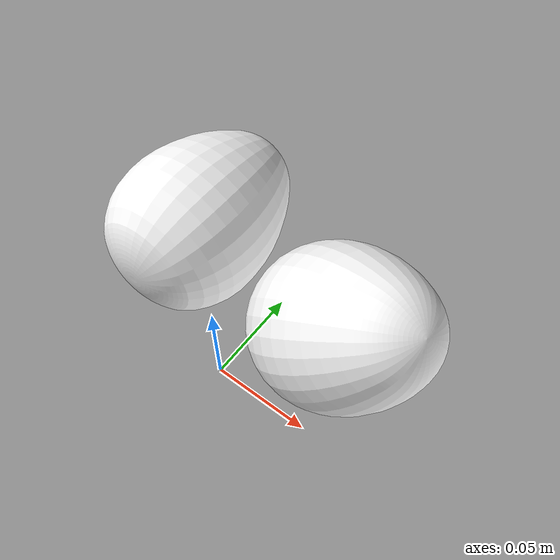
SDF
<?xml version="1.0" ?>
<sdf version="1.5">
  <model name="egg">
    <static>true</static>
    <link name="link">
      <pose>0 0 0 0 0 0</pose>

      <visual name="visual">
        <cast_shadows>false</cast_shadows>
        <geometry>
          <mesh>
            <uri>model://egg/meshes/egg.dae</uri>
	    <scale> 0.15 0.15 0.15 </scale>
          </mesh>
        </geometry>
      </visual>

      <collision name="collision">
        <geometry>
          <mesh>
            <uri>model://egg/meshes/egg.dae</uri>
          </mesh>
        </geometry>
      </collision>

    </link>
  </model>
</sdf>
